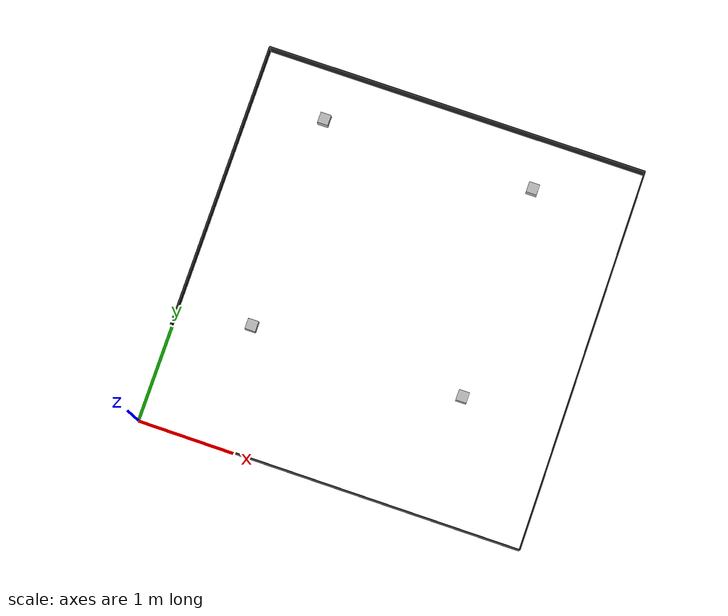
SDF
<sdf version="1.5">
 <world name="default">
  <light name="sun" type="directional">
   <pose>0 0 1000 0.4 0.2 0</pose>
   <diffuse>1 1 1 1</diffuse>
   <specular>0.6 0.6 0.6 1</specular>
   <direction>0.1 0.1 -0.9</direction>
   <attenuation>
    <range>20</range>
    <constant>0.5</constant>
    <linear>0.01</linear>
    <quadratic>0.001</quadratic>
   </attenuation>
  </light>
  <model name="bar_ssl_1">
   <static>true</static>
   <link name="link">
    <pose>2 0 0.1 0 0 0</pose>
    <collision name="collision"><geometry><box><size>4 0.01 0.2</size></box></geometry></collision>
    <visual name="visual">
     <cast_shadows>false</cast_shadows>
     <geometry><box><size>4 0.01 0.2</size></box></geometry>
     <material>
      <script><uri>file://media/materials/scripts/gazebo.material</uri><name>Gazebo/Black</name></script>
     </material>
    </visual>
   </link>
  </model>
  <model name="bar_ssl_2">
   <static>true</static>
   <link name="link">
    <pose>2 4 0.1 0 0 0</pose>
    <collision name="collision"><geometry><box><size>4 0.01 0.2</size></box></geometry></collision>
    <visual name="visual">
     <cast_shadows>false</cast_shadows>
     <geometry><box><size>4 0.01 0.2</size></box></geometry>
     <material>
      <script><uri>file://media/materials/scripts/gazebo.material</uri><name>Gazebo/Black</name></script>
     </material>
    </visual>
   </link>
  </model>
  <model name="bar_ssl_3">
   <static>true</static>
   <link name="link">
    <pose>0 2 0.1 0 0 0</pose>
    <collision name="collision"><geometry><box><size>0.01 4 0.2</size></box></geometry></collision>
    <visual name="visual">
     <cast_shadows>false</cast_shadows>
     <geometry><box><size>0.01 4 0.2</size></box></geometry>
     <material>
      <script><uri>file://media/materials/scripts/gazebo.material</uri><name>Gazebo/Black</name></script>
     </material>
    </visual>
   </link>
  </model>
  <model name="bar_ssl_4">
   <static>true</static>
   <link name="link">
    <pose>4 2 0.1 0 0 0</pose>
    <collision name="collision"><geometry><box><size>0.01 4 0.2</size></box></geometry></collision>
    <visual name="visual">
     <cast_shadows>false</cast_shadows>
     <geometry><box><size>0.01 4 0.2</size></box></geometry>
     <material>
      <script><uri>file://media/materials/scripts/gazebo.material</uri><name>Gazebo/Black</name></script>
     </material>
    </visual>
   </link>
  </model>
  <model name="wideanglecamera1">
   <pose>1.0 1.0 2.5 0 1.57079632679 1.57079632679</pose>
   <static>1</static>
   <link name="link">
    <inertial><mass>0.1</mass></inertial>
    <collision name="collision"><geometry><box><size>0.1 0.1 0.1</size></box></geometry></collision>
    <visual name="visual"><geometry><box><size>0.1 0.1 0.1</size></box></geometry></visual>
    <sensor type="camera" name="camera1">
     <update_rate>30.0</update_rate>
     <camera name="head">
      <horizontal_fov>1.3962634</horizontal_fov>
      <image><width>1280</width><height>720</height><format>R8G8B8</format></image>
      <clip><near>0.02</near><far>300</far></clip>
      <noise><type>gaussian</type><mean>0.0</mean><stddev>0.007</stddev></noise>
     </camera>
     <plugin name="camera_controller" filename="libgazebo_ros_camera.so">
      <alwaysOn>true</alwaysOn>
      <updateRate>0.0</updateRate>
      <cameraName>rrbot/camera1</cameraName>
      <imageTopicName>image_raw</imageTopicName>
      <cameraInfoTopicName>camera_info</cameraInfoTopicName>
      <frameName>camera_link</frameName>
      <hackBaseline>0.07</hackBaseline>
      <distortionK1>0.0</distortionK1>
      <distortionK2>0.0</distortionK2>
      <distortionK3>0.0</distortionK3>
      <distortionT1>0.0</distortionT1>
      <distortionT2>0.0</distortionT2>
     </plugin>
    </sensor>
   </link>
  </model>
  <model name="wideanglecamera2">
   <pose>3.0 3.0 2.5 0 1.57079632679 1.57079632679</pose>
   <static>1</static>
   <link name="link">
    <inertial><mass>0.1</mass></inertial>
    <collision name="collision"><geometry><box><size>0.1 0.1 0.1</size></box></geometry></collision>
    <visual name="visual"><geometry><box><size>0.1 0.1 0.1</size></box></geometry></visual>
    <sensor type="camera" name="camera2">
     <update_rate>30.0</update_rate>
     <camera name="head">
      <horizontal_fov>1.3962634</horizontal_fov>
      <image><width>1280</width><height>720</height><format>R8G8B8</format></image>
      <clip><near>0.02</near><far>300</far></clip>
      <noise><type>gaussian</type><mean>0.0</mean><stddev>0.007</stddev></noise>
     </camera>
     <plugin name="camera_controller" filename="libgazebo_ros_camera.so">
      <alwaysOn>true</alwaysOn>
      <updateRate>0.0</updateRate>
      <cameraName>rrbot/camera2</cameraName>
      <imageTopicName>image_raw</imageTopicName>
      <cameraInfoTopicName>camera_info</cameraInfoTopicName>
      <frameName>camera_link</frameName>
      <hackBaseline>0.07</hackBaseline>
      <distortionK1>0.0</distortionK1>
      <distortionK2>0.0</distortionK2>
      <distortionK3>0.0</distortionK3>
      <distortionT1>0.0</distortionT1>
      <distortionT2>0.0</distortionT2>
     </plugin>
    </sensor>
   </link>
  </model>
  <model name="wideanglecamera3">
   <pose>3.0 1.0 2.5 0 1.57079632679 1.57079632679</pose>
   <static>1</static>
   <link name="link">
    <inertial><mass>0.1</mass></inertial>
    <collision name="collision"><geometry><box><size>0.1 0.1 0.1</size></box></geometry></collision>
    <visual name="visual"><geometry><box><size>0.1 0.1 0.1</size></box></geometry></visual>
    <sensor type="camera" name="camera3">
     <update_rate>30.0</update_rate>
     <camera name="head">
      <horizontal_fov>1.3962634</horizontal_fov>
      <image><width>1280</width><height>720</height><format>R8G8B8</format></image>
      <clip><near>0.02</near><far>300</far></clip>
      <noise><type>gaussian</type><mean>0.0</mean><stddev>0.007</stddev></noise>
     </camera>
     <plugin name="camera_controller" filename="libgazebo_ros_camera.so">
      <alwaysOn>true</alwaysOn>
      <updateRate>0.0</updateRate>
      <cameraName>rrbot/camera3</cameraName>
      <imageTopicName>image_raw</imageTopicName>
      <cameraInfoTopicName>camera_info</cameraInfoTopicName>
      <frameName>camera_link</frameName>
      <hackBaseline>0.07</hackBaseline>
      <distortionK1>0.0</distortionK1>
      <distortionK2>0.0</distortionK2>
      <distortionK3>0.0</distortionK3>
      <distortionT1>0.0</distortionT1>
      <distortionT2>0.0</distortionT2>
     </plugin>
    </sensor>
   </link>
  </model>
  <model name="wideanglecamera4">
   <pose>1.0 3.0 2.5 0 1.57079632679 1.57079632679</pose>
   <static>1</static>
   <link name="link">
    <inertial><mass>0.1</mass></inertial>
    <collision name="collision"><geometry><box><size>0.1 0.1 0.1</size></box></geometry></collision>
    <visual name="visual"><geometry><box><size>0.1 0.1 0.1</size></box></geometry></visual>
    <sensor type="camera" name="camera4">
     <update_rate>30.0</update_rate>
     <camera name="head">
      <horizontal_fov>1.3962634</horizontal_fov>
      <image><width>1280</width><height>720</height><format>R8G8B8</format></image>
      <clip><near>0.02</near><far>300</far></clip>
      <noise><type>gaussian</type><mean>0.0</mean><stddev>0.007</stddev></noise>
     </camera>
     <plugin name="camera_controller" filename="libgazebo_ros_camera.so">
      <alwaysOn>true</alwaysOn>
      <updateRate>0.0</updateRate>
      <cameraName>rrbot/camera4</cameraName>
      <imageTopicName>image_raw</imageTopicName>
      <cameraInfoTopicName>camera_info</cameraInfoTopicName>
      <frameName>camera_link</frameName>
      <hackBaseline>0.07</hackBaseline>
      <distortionK1>0.0</distortionK1>
      <distortionK2>0.0</distortionK2>
      <distortionK3>0.0</distortionK3>
      <distortionT1>0.0</distortionT1>
      <distortionT2>0.0</distortionT2>
     </plugin>
    </sensor>
   </link>
  </model>
  <gravity>0 0 -9.8</gravity>
  <magnetic_field>6e-06 2.3e-05 -4.2e-05</magnetic_field>
  <atmosphere type="adiabatic"/>
  <physics name="default_physics" default="0" type="ode">
   <max_step_size>0.001</max_step_size>
   <real_time_factor>1</real_time_factor>
   <real_time_update_rate>1000</real_time_update_rate>
  </physics>
  <scene><ambient>0.4 0.4 0.4 1</ambient><background>0.7 0.7 0.7 1</background><shadows>1</shadows></scene>
 </world>
</sdf>
